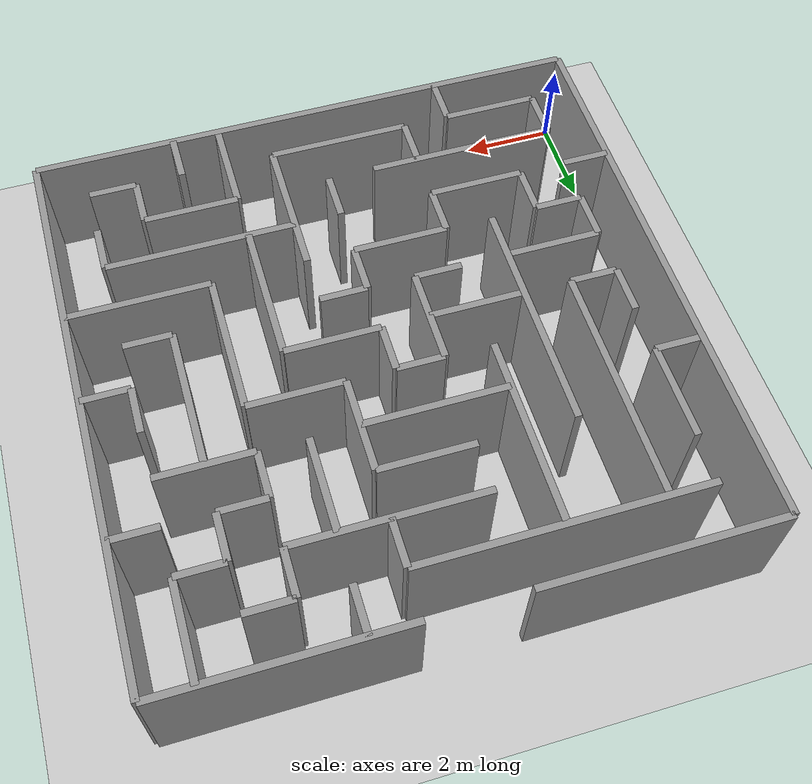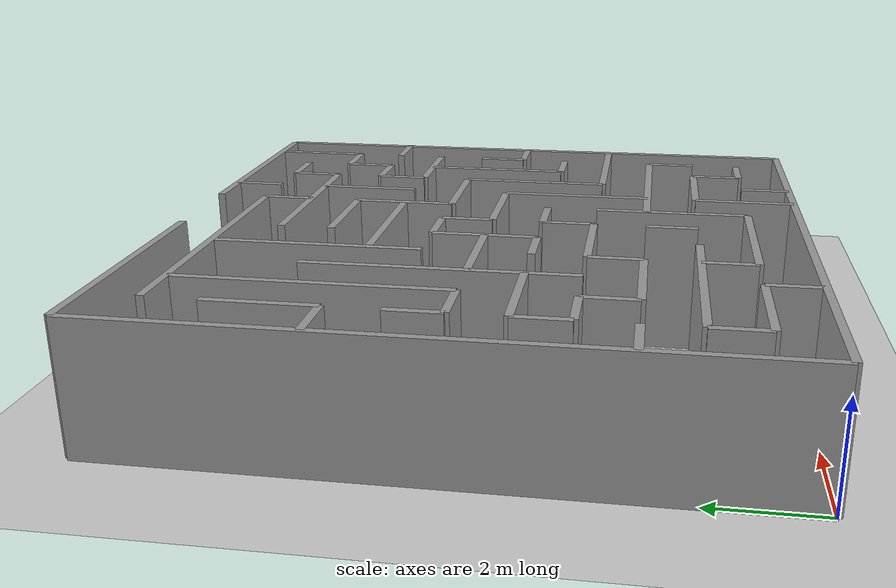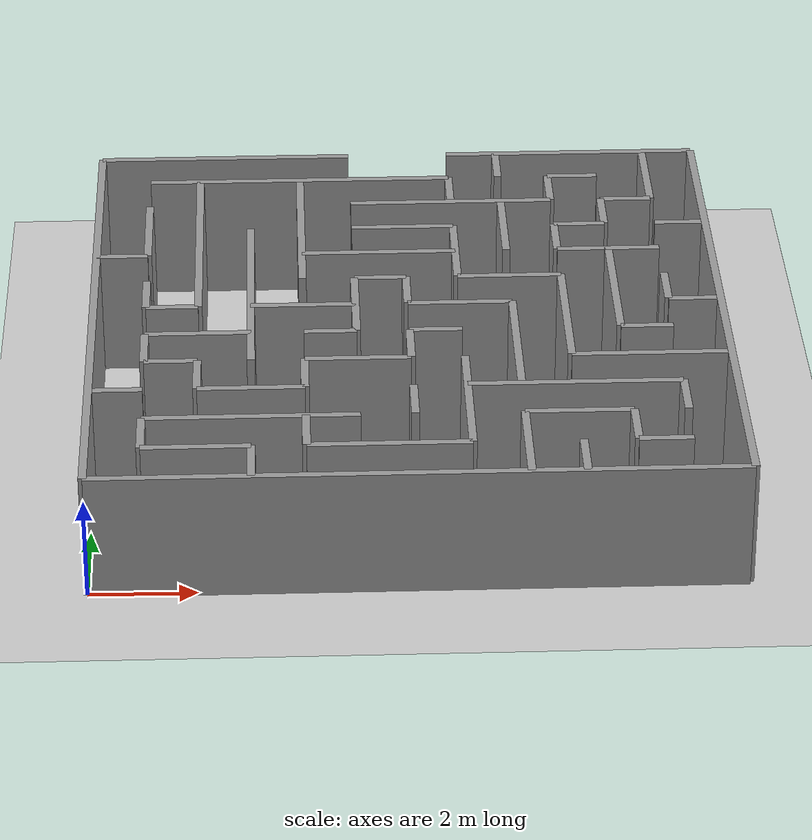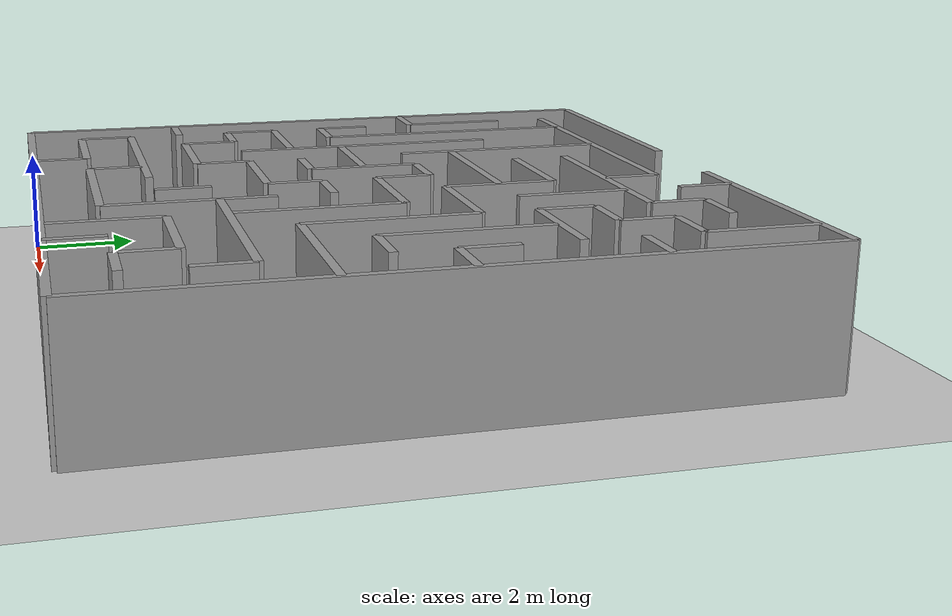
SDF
<sdf version='1.7'>
  <world name='default'>
    <light name='sun' type='directional'>
      <cast_shadows>1</cast_shadows><pose>0 0 10 0 -0 0</pose>
      <diffuse>0.8 0.8 0.8 1</diffuse><specular>0.2 0.2 0.2 1</specular>
      <attenuation><range>1000</range><constant>0.9</constant><linear>0.01</linear><quadratic>0.001</quadratic></attenuation>
      <direction>-0.5 0.1 -0.9</direction>
      <spot><inner_angle>0</inner_angle><outer_angle>0</outer_angle><falloff>0</falloff></spot>
    </light>
    <model name='ground_plane'><static>1</static><link name='link'>
      <collision name='collision'><geometry><plane><normal>0 0 1</normal><size>100 100</size></plane></geometry>
        <surface><contact><collide_bitmask>65535</collide_bitmask><ode/></contact>
          <friction><ode><mu>100</mu><mu2>50</mu2></ode><torsional><ode/></torsional></friction><bounce/></surface>
        <max_contacts>10</max_contacts></collision>
      <visual name='visual'><cast_shadows>0</cast_shadows>
        <geometry><plane><normal>0 0 1</normal><size>100 100</size></plane></geometry>
        <material><script><uri>file://media/materials/scripts/gazebo.material</uri><name>Gazebo/Grey</name></script></material>
      </visual><self_collide>0</self_collide><enable_wind>0</enable_wind><kinematic>0</kinematic>
    </link></model>
    <gravity>0 0 -9.8</gravity><magnetic_field>6e-06 2.3e-05 -4.2e-05</magnetic_field>
    <atmosphere type='adiabatic'/>
    <physics type='ode'><max_step_size>0.001</max_step_size><real_time_factor>1</real_time_factor><real_time_update_rate>1000</real_time_update_rate></physics>
    <scene><ambient>0.4 0.4 0.4 1</ambient><background>0.7 0.7 0.7 1</background><shadows>1</shadows></scene>
    <wind/><spherical_coordinates><surface_model>EARTH_WGS84</surface_model>
      <latitude_deg>0</latitude_deg><longitude_deg>0</longitude_deg><elevation>0</elevation><heading_deg>0</heading_deg>
    </spherical_coordinates>

    <model name='maze_3'>
      <pose>0 0 0 0 0 0</pose>

      <link name='Ext_W'><collision name='col'><geometry><box><size>12 0.15 2.5</size></box></geometry><pose>0 0 1.25 0 0 0</pose></collision><visual name='vis'><pose>0 0 1.25 0 0 0</pose><geometry><box><size>12 0.15 2.5</size></box></geometry><material><script><uri>file://media/materials/scripts/gazebo.material</uri><name>Gazebo/Grey</name></script></material></visual><pose>0 6.0 0 0 0 1.5708</pose><self_collide>0</self_collide><enable_wind>0</enable_wind><kinematic>0</kinematic></link>
      <link name='Ext_E'><collision name='col'><geometry><box><size>12 0.15 2.5</size></box></geometry><pose>0 0 1.25 0 0 0</pose></collision><visual name='vis'><pose>0 0 1.25 0 0 0</pose><geometry><box><size>12 0.15 2.5</size></box></geometry><material><script><uri>file://media/materials/scripts/gazebo.material</uri><name>Gazebo/Grey</name></script></material></visual><pose>12 6.0 0 0 0 1.5708</pose><self_collide>0</self_collide><enable_wind>0</enable_wind><kinematic>0</kinematic></link>
      <link name='Ext_S'><collision name='col'><geometry><box><size>12 0.15 2.5</size></box></geometry><pose>0 0 1.25 0 0 0</pose></collision><visual name='vis'><pose>0 0 1.25 0 0 0</pose><geometry><box><size>12 0.15 2.5</size></box></geometry><material><script><uri>file://media/materials/scripts/gazebo.material</uri><name>Gazebo/Grey</name></script></material></visual><pose>6.0 0 0 0 0 0</pose><self_collide>0</self_collide><enable_wind>0</enable_wind><kinematic>0</kinematic></link>
      <link name='Ext_NL'><collision name='col'><geometry><box><size>5 0.15 2.5</size></box></geometry><pose>0 0 1.25 0 0 0</pose></collision><visual name='vis'><pose>0 0 1.25 0 0 0</pose><geometry><box><size>5 0.15 2.5</size></box></geometry><material><script><uri>file://media/materials/scripts/gazebo.material</uri><name>Gazebo/Grey</name></script></material></visual><pose>2.5 12 0 0 0 0</pose><self_collide>0</self_collide><enable_wind>0</enable_wind><kinematic>0</kinematic></link>
      <link name='Ext_NR'><collision name='col'><geometry><box><size>5 0.15 2.5</size></box></geometry><pose>0 0 1.25 0 0 0</pose></collision><visual name='vis'><pose>0 0 1.25 0 0 0</pose><geometry><box><size>5 0.15 2.5</size></box></geometry><material><script><uri>file://media/materials/scripts/gazebo.material</uri><name>Gazebo/Grey</name></script></material></visual><pose>9.5 12 0 0 0 0</pose><self_collide>0</self_collide><enable_wind>0</enable_wind><kinematic>0</kinematic></link>
      <link name='H_1_1_3'><collision name='col'><geometry><box><size>2 0.15 2.5</size></box></geometry><pose>0 0 1.25 0 0 0</pose></collision><visual name='vis'><pose>0 0 1.25 0 0 0</pose><geometry><box><size>2 0.15 2.5</size></box></geometry><material><script><uri>file://media/materials/scripts/gazebo.material</uri><name>Gazebo/Grey</name></script></material></visual><pose>2.0 1 0 0 0 0</pose><self_collide>0</self_collide><enable_wind>0</enable_wind><kinematic>0</kinematic></link>
      <link name='H_1_4_7'><collision name='col'><geometry><box><size>3 0.15 2.5</size></box></geometry><pose>0 0 1.25 0 0 0</pose></collision><visual name='vis'><pose>0 0 1.25 0 0 0</pose><geometry><box><size>3 0.15 2.5</size></box></geometry><material><script><uri>file://media/materials/scripts/gazebo.material</uri><name>Gazebo/Grey</name></script></material></visual><pose>5.5 1 0 0 0 0</pose><self_collide>0</self_collide><enable_wind>0</enable_wind><kinematic>0</kinematic></link>
      <link name='H_1_10_11'><collision name='col'><geometry><box><size>1 0.15 2.5</size></box></geometry><pose>0 0 1.25 0 0 0</pose></collision><visual name='vis'><pose>0 0 1.25 0 0 0</pose><geometry><box><size>1 0.15 2.5</size></box></geometry><material><script><uri>file://media/materials/scripts/gazebo.material</uri><name>Gazebo/Grey</name></script></material></visual><pose>10.5 1 0 0 0 0</pose><self_collide>0</self_collide><enable_wind>0</enable_wind><kinematic>0</kinematic></link>
      <link name='H_2_1_5'><collision name='col'><geometry><box><size>4 0.15 2.5</size></box></geometry><pose>0 0 1.25 0 0 0</pose></collision><visual name='vis'><pose>0 0 1.25 0 0 0</pose><geometry><box><size>4 0.15 2.5</size></box></geometry><material><script><uri>file://media/materials/scripts/gazebo.material</uri><name>Gazebo/Grey</name></script></material></visual><pose>3.0 2 0 0 0 0</pose><self_collide>0</self_collide><enable_wind>0</enable_wind><kinematic>0</kinematic></link>
      <link name='H_2_8_10'><collision name='col'><geometry><box><size>2 0.15 2.5</size></box></geometry><pose>0 0 1.25 0 0 0</pose></collision><visual name='vis'><pose>0 0 1.25 0 0 0</pose><geometry><box><size>2 0.15 2.5</size></box></geometry><material><script><uri>file://media/materials/scripts/gazebo.material</uri><name>Gazebo/Grey</name></script></material></visual><pose>9.0 2 0 0 0 0</pose><self_collide>0</self_collide><enable_wind>0</enable_wind><kinematic>0</kinematic></link>
      <link name='H_3_0_1'><collision name='col'><geometry><box><size>1 0.15 2.5</size></box></geometry><pose>0 0 1.25 0 0 0</pose></collision><visual name='vis'><pose>0 0 1.25 0 0 0</pose><geometry><box><size>1 0.15 2.5</size></box></geometry><material><script><uri>file://media/materials/scripts/gazebo.material</uri><name>Gazebo/Grey</name></script></material></visual><pose>0.5 3 0 0 0 0</pose><self_collide>0</self_collide><enable_wind>0</enable_wind><kinematic>0</kinematic></link>
      <link name='H_3_2_4'><collision name='col'><geometry><box><size>2 0.15 2.5</size></box></geometry><pose>0 0 1.25 0 0 0</pose></collision><visual name='vis'><pose>0 0 1.25 0 0 0</pose><geometry><box><size>2 0.15 2.5</size></box></geometry><material><script><uri>file://media/materials/scripts/gazebo.material</uri><name>Gazebo/Grey</name></script></material></visual><pose>3.0 3 0 0 0 0</pose><self_collide>0</self_collide><enable_wind>0</enable_wind><kinematic>0</kinematic></link>
      <link name='H_3_7_11'><collision name='col'><geometry><box><size>4 0.15 2.5</size></box></geometry><pose>0 0 1.25 0 0 0</pose></collision><visual name='vis'><pose>0 0 1.25 0 0 0</pose><geometry><box><size>4 0.15 2.5</size></box></geometry><material><script><uri>file://media/materials/scripts/gazebo.material</uri><name>Gazebo/Grey</name></script></material></visual><pose>9.0 3 0 0 0 0</pose><self_collide>0</self_collide><enable_wind>0</enable_wind><kinematic>0</kinematic></link>
      <link name='H_4_1_2'><collision name='col'><geometry><box><size>1 0.15 2.5</size></box></geometry><pose>0 0 1.25 0 0 0</pose></collision><visual name='vis'><pose>0 0 1.25 0 0 0</pose><geometry><box><size>1 0.15 2.5</size></box></geometry><material><script><uri>file://media/materials/scripts/gazebo.material</uri><name>Gazebo/Grey</name></script></material></visual><pose>1.5 4 0 0 0 0</pose><self_collide>0</self_collide><enable_wind>0</enable_wind><kinematic>0</kinematic></link>
      <link name='H_4_4_6'><collision name='col'><geometry><box><size>2 0.15 2.5</size></box></geometry><pose>0 0 1.25 0 0 0</pose></collision><visual name='vis'><pose>0 0 1.25 0 0 0</pose><geometry><box><size>2 0.15 2.5</size></box></geometry><material><script><uri>file://media/materials/scripts/gazebo.material</uri><name>Gazebo/Grey</name></script></material></visual><pose>5.0 4 0 0 0 0</pose><self_collide>0</self_collide><enable_wind>0</enable_wind><kinematic>0</kinematic></link>
      <link name='H_4_9_12'><collision name='col'><geometry><box><size>3 0.15 2.5</size></box></geometry><pose>0 0 1.25 0 0 0</pose></collision><visual name='vis'><pose>0 0 1.25 0 0 0</pose><geometry><box><size>3 0.15 2.5</size></box></geometry><material><script><uri>file://media/materials/scripts/gazebo.material</uri><name>Gazebo/Grey</name></script></material></visual><pose>10.5 4 0 0 0 0</pose><self_collide>0</self_collide><enable_wind>0</enable_wind><kinematic>0</kinematic></link>
      <link name='H_5_1_3'><collision name='col'><geometry><box><size>2 0.15 2.5</size></box></geometry><pose>0 0 1.25 0 0 0</pose></collision><visual name='vis'><pose>0 0 1.25 0 0 0</pose><geometry><box><size>2 0.15 2.5</size></box></geometry><material><script><uri>file://media/materials/scripts/gazebo.material</uri><name>Gazebo/Grey</name></script></material></visual><pose>2.0 5 0 0 0 0</pose><self_collide>0</self_collide><enable_wind>0</enable_wind><kinematic>0</kinematic></link>
      <link name='H_5_4_5'><collision name='col'><geometry><box><size>1 0.15 2.5</size></box></geometry><pose>0 0 1.25 0 0 0</pose></collision><visual name='vis'><pose>0 0 1.25 0 0 0</pose><geometry><box><size>1 0.15 2.5</size></box></geometry><material><script><uri>file://media/materials/scripts/gazebo.material</uri><name>Gazebo/Grey</name></script></material></visual><pose>4.5 5 0 0 0 0</pose><self_collide>0</self_collide><enable_wind>0</enable_wind><kinematic>0</kinematic></link>
      <link name='H_5_6_7'><collision name='col'><geometry><box><size>1 0.15 2.5</size></box></geometry><pose>0 0 1.25 0 0 0</pose></collision><visual name='vis'><pose>0 0 1.25 0 0 0</pose><geometry><box><size>1 0.15 2.5</size></box></geometry><material><script><uri>file://media/materials/scripts/gazebo.material</uri><name>Gazebo/Grey</name></script></material></visual><pose>6.5 5 0 0 0 0</pose><self_collide>0</self_collide><enable_wind>0</enable_wind><kinematic>0</kinematic></link>
      <link name='H_5_10_11'><collision name='col'><geometry><box><size>1 0.15 2.5</size></box></geometry><pose>0 0 1.25 0 0 0</pose></collision><visual name='vis'><pose>0 0 1.25 0 0 0</pose><geometry><box><size>1 0.15 2.5</size></box></geometry><material><script><uri>file://media/materials/scripts/gazebo.material</uri><name>Gazebo/Grey</name></script></material></visual><pose>10.5 5 0 0 0 0</pose><self_collide>0</self_collide><enable_wind>0</enable_wind><kinematic>0</kinematic></link>
      <link name='H_6_1_2'><collision name='col'><geometry><box><size>1 0.15 2.5</size></box></geometry><pose>0 0 1.25 0 0 0</pose></collision><visual name='vis'><pose>0 0 1.25 0 0 0</pose><geometry><box><size>1 0.15 2.5</size></box></geometry><material><script><uri>file://media/materials/scripts/gazebo.material</uri><name>Gazebo/Grey</name></script></material></visual><pose>1.5 6 0 0 0 0</pose><self_collide>0</self_collide><enable_wind>0</enable_wind><kinematic>0</kinematic></link>
      <link name='H_6_3_5'><collision name='col'><geometry><box><size>2 0.15 2.5</size></box></geometry><pose>0 0 1.25 0 0 0</pose></collision><visual name='vis'><pose>0 0 1.25 0 0 0</pose><geometry><box><size>2 0.15 2.5</size></box></geometry><material><script><uri>file://media/materials/scripts/gazebo.material</uri><name>Gazebo/Grey</name></script></material></visual><pose>4.0 6 0 0 0 0</pose><self_collide>0</self_collide><enable_wind>0</enable_wind><kinematic>0</kinematic></link>
      <link name='H_6_6_8'><collision name='col'><geometry><box><size>2 0.15 2.5</size></box></geometry><pose>0 0 1.25 0 0 0</pose></collision><visual name='vis'><pose>0 0 1.25 0 0 0</pose><geometry><box><size>2 0.15 2.5</size></box></geometry><material><script><uri>file://media/materials/scripts/gazebo.material</uri><name>Gazebo/Grey</name></script></material></visual><pose>7.0 6 0 0 0 0</pose><self_collide>0</self_collide><enable_wind>0</enable_wind><kinematic>0</kinematic></link>
      <link name='H_6_11_12'><collision name='col'><geometry><box><size>1 0.15 2.5</size></box></geometry><pose>0 0 1.25 0 0 0</pose></collision><visual name='vis'><pose>0 0 1.25 0 0 0</pose><geometry><box><size>1 0.15 2.5</size></box></geometry><material><script><uri>file://media/materials/scripts/gazebo.material</uri><name>Gazebo/Grey</name></script></material></visual><pose>11.5 6 0 0 0 0</pose><self_collide>0</self_collide><enable_wind>0</enable_wind><kinematic>0</kinematic></link>
      <link name='H_7_5_6'><collision name='col'><geometry><box><size>1 0.15 2.5</size></box></geometry><pose>0 0 1.25 0 0 0</pose></collision><visual name='vis'><pose>0 0 1.25 0 0 0</pose><geometry><box><size>1 0.15 2.5</size></box></geometry><material><script><uri>file://media/materials/scripts/gazebo.material</uri><name>Gazebo/Grey</name></script></material></visual><pose>5.5 7 0 0 0 0</pose><self_collide>0</self_collide><enable_wind>0</enable_wind><kinematic>0</kinematic></link>
      <link name='H_7_7_9'><collision name='col'><geometry><box><size>2 0.15 2.5</size></box></geometry><pose>0 0 1.25 0 0 0</pose></collision><visual name='vis'><pose>0 0 1.25 0 0 0</pose><geometry><box><size>2 0.15 2.5</size></box></geometry><material><script><uri>file://media/materials/scripts/gazebo.material</uri><name>Gazebo/Grey</name></script></material></visual><pose>8.0 7 0 0 0 0</pose><self_collide>0</self_collide><enable_wind>0</enable_wind><kinematic>0</kinematic></link>
      <link name='H_8_0_1'><collision name='col'><geometry><box><size>1 0.15 2.5</size></box></geometry><pose>0 0 1.25 0 0 0</pose></collision><visual name='vis'><pose>0 0 1.25 0 0 0</pose><geometry><box><size>1 0.15 2.5</size></box></geometry><material><script><uri>file://media/materials/scripts/gazebo.material</uri><name>Gazebo/Grey</name></script></material></visual><pose>0.5 8 0 0 0 0</pose><self_collide>0</self_collide><enable_wind>0</enable_wind><kinematic>0</kinematic></link>
      <link name='H_8_4_7'><collision name='col'><geometry><box><size>3 0.15 2.5</size></box></geometry><pose>0 0 1.25 0 0 0</pose></collision><visual name='vis'><pose>0 0 1.25 0 0 0</pose><geometry><box><size>3 0.15 2.5</size></box></geometry><material><script><uri>file://media/materials/scripts/gazebo.material</uri><name>Gazebo/Grey</name></script></material></visual><pose>5.5 8 0 0 0 0</pose><self_collide>0</self_collide><enable_wind>0</enable_wind><kinematic>0</kinematic></link>
      <link name='H_8_9_11'><collision name='col'><geometry><box><size>2 0.15 2.5</size></box></geometry><pose>0 0 1.25 0 0 0</pose></collision><visual name='vis'><pose>0 0 1.25 0 0 0</pose><geometry><box><size>2 0.15 2.5</size></box></geometry><material><script><uri>file://media/materials/scripts/gazebo.material</uri><name>Gazebo/Grey</name></script></material></visual><pose>10.0 8 0 0 0 0</pose><self_collide>0</self_collide><enable_wind>0</enable_wind><kinematic>0</kinematic></link>
      <link name='H_9_5_7'><collision name='col'><geometry><box><size>2 0.15 2.5</size></box></geometry><pose>0 0 1.25 0 0 0</pose></collision><visual name='vis'><pose>0 0 1.25 0 0 0</pose><geometry><box><size>2 0.15 2.5</size></box></geometry><material><script><uri>file://media/materials/scripts/gazebo.material</uri><name>Gazebo/Grey</name></script></material></visual><pose>6.0 9 0 0 0 0</pose><self_collide>0</self_collide><enable_wind>0</enable_wind><kinematic>0</kinematic></link>
      <link name='H_9_9_10'><collision name='col'><geometry><box><size>1 0.15 2.5</size></box></geometry><pose>0 0 1.25 0 0 0</pose></collision><visual name='vis'><pose>0 0 1.25 0 0 0</pose><geometry><box><size>1 0.15 2.5</size></box></geometry><material><script><uri>file://media/materials/scripts/gazebo.material</uri><name>Gazebo/Grey</name></script></material></visual><pose>9.5 9 0 0 0 0</pose><self_collide>0</self_collide><enable_wind>0</enable_wind><kinematic>0</kinematic></link>
      <link name='H_9_11_12'><collision name='col'><geometry><box><size>1 0.15 2.5</size></box></geometry><pose>0 0 1.25 0 0 0</pose></collision><visual name='vis'><pose>0 0 1.25 0 0 0</pose><geometry><box><size>1 0.15 2.5</size></box></geometry><material><script><uri>file://media/materials/scripts/gazebo.material</uri><name>Gazebo/Grey</name></script></material></visual><pose>11.5 9 0 0 0 0</pose><self_collide>0</self_collide><enable_wind>0</enable_wind><kinematic>0</kinematic></link>
      <link name='H_10_5_9'><collision name='col'><geometry><box><size>4 0.15 2.5</size></box></geometry><pose>0 0 1.25 0 0 0</pose></collision><visual name='vis'><pose>0 0 1.25 0 0 0</pose><geometry><box><size>4 0.15 2.5</size></box></geometry><material><script><uri>file://media/materials/scripts/gazebo.material</uri><name>Gazebo/Grey</name></script></material></visual><pose>7.0 10 0 0 0 0</pose><self_collide>0</self_collide><enable_wind>0</enable_wind><kinematic>0</kinematic></link>
      <link name='H_10_10_11'><collision name='col'><geometry><box><size>1 0.15 2.5</size></box></geometry><pose>0 0 1.25 0 0 0</pose></collision><visual name='vis'><pose>0 0 1.25 0 0 0</pose><geometry><box><size>1 0.15 2.5</size></box></geometry><material><script><uri>file://media/materials/scripts/gazebo.material</uri><name>Gazebo/Grey</name></script></material></visual><pose>10.5 10 0 0 0 0</pose><self_collide>0</self_collide><enable_wind>0</enable_wind><kinematic>0</kinematic></link>
      <link name='H_11_1_7'><collision name='col'><geometry><box><size>6 0.15 2.5</size></box></geometry><pose>0 0 1.25 0 0 0</pose></collision><visual name='vis'><pose>0 0 1.25 0 0 0</pose><geometry><box><size>6 0.15 2.5</size></box></geometry><material><script><uri>file://media/materials/scripts/gazebo.material</uri><name>Gazebo/Grey</name></script></material></visual><pose>4.0 11 0 0 0 0</pose><self_collide>0</self_collide><enable_wind>0</enable_wind><kinematic>0</kinematic></link>
      <link name='H_11_9_10'><collision name='col'><geometry><box><size>1 0.15 2.5</size></box></geometry><pose>0 0 1.25 0 0 0</pose></collision><visual name='vis'><pose>0 0 1.25 0 0 0</pose><geometry><box><size>1 0.15 2.5</size></box></geometry><material><script><uri>file://media/materials/scripts/gazebo.material</uri><name>Gazebo/Grey</name></script></material></visual><pose>9.5 11 0 0 0 0</pose><self_collide>0</self_collide><enable_wind>0</enable_wind><kinematic>0</kinematic></link>
      <link name='V_1_1_2'><collision name='col'><geometry><box><size>1 0.15 2.5</size></box></geometry><pose>0 0 1.25 0 0 0</pose></collision><visual name='vis'><pose>0 0 1.25 0 0 0</pose><geometry><box><size>1 0.15 2.5</size></box></geometry><material><script><uri>file://media/materials/scripts/gazebo.material</uri><name>Gazebo/Grey</name></script></material></visual><pose>1 1.5 0 0 0 1.5708</pose><self_collide>0</self_collide><enable_wind>0</enable_wind><kinematic>0</kinematic></link>
      <link name='V_1_4_5'><collision name='col'><geometry><box><size>1 0.15 2.5</size></box></geometry><pose>0 0 1.25 0 0 0</pose></collision><visual name='vis'><pose>0 0 1.25 0 0 0</pose><geometry><box><size>1 0.15 2.5</size></box></geometry><material><script><uri>file://media/materials/scripts/gazebo.material</uri><name>Gazebo/Grey</name></script></material></visual><pose>1 4.5 0 0 0 1.5708</pose><self_collide>0</self_collide><enable_wind>0</enable_wind><kinematic>0</kinematic></link>
      <link name='V_1_6_7'><collision name='col'><geometry><box><size>1 0.15 2.5</size></box></geometry><pose>0 0 1.25 0 0 0</pose></collision><visual name='vis'><pose>0 0 1.25 0 0 0</pose><geometry><box><size>1 0.15 2.5</size></box></geometry><material><script><uri>file://media/materials/scripts/gazebo.material</uri><name>Gazebo/Grey</name></script></material></visual><pose>1 6.5 0 0 0 1.5708</pose><self_collide>0</self_collide><enable_wind>0</enable_wind><kinematic>0</kinematic></link>
      <link name='V_1_8_10'><collision name='col'><geometry><box><size>2 0.15 2.5</size></box></geometry><pose>0 0 1.25 0 0 0</pose></collision><visual name='vis'><pose>0 0 1.25 0 0 0</pose><geometry><box><size>2 0.15 2.5</size></box></geometry><material><script><uri>file://media/materials/scripts/gazebo.material</uri><name>Gazebo/Grey</name></script></material></visual><pose>1 9.0 0 0 0 1.5708</pose><self_collide>0</self_collide><enable_wind>0</enable_wind><kinematic>0</kinematic></link>
      <link name='V_2_3_4'><collision name='col'><geometry><box><size>1 0.15 2.5</size></box></geometry><pose>0 0 1.25 0 0 0</pose></collision><visual name='vis'><pose>0 0 1.25 0 0 0</pose><geometry><box><size>1 0.15 2.5</size></box></geometry><material><script><uri>file://media/materials/scripts/gazebo.material</uri><name>Gazebo/Grey</name></script></material></visual><pose>2 3.5 0 0 0 1.5708</pose><self_collide>0</self_collide><enable_wind>0</enable_wind><kinematic>0</kinematic></link>
      <link name='V_2_6_11'><collision name='col'><geometry><box><size>5 0.15 2.5</size></box></geometry><pose>0 0 1.25 0 0 0</pose></collision><visual name='vis'><pose>0 0 1.25 0 0 0</pose><geometry><box><size>5 0.15 2.5</size></box></geometry><material><script><uri>file://media/materials/scripts/gazebo.material</uri><name>Gazebo/Grey</name></script></material></visual><pose>2 8.5 0 0 0 1.5708</pose><self_collide>0</self_collide><enable_wind>0</enable_wind><kinematic>0</kinematic></link>
      <link name='V_3_0_1'><collision name='col'><geometry><box><size>1 0.15 2.5</size></box></geometry><pose>0 0 1.25 0 0 0</pose></collision><visual name='vis'><pose>0 0 1.25 0 0 0</pose><geometry><box><size>1 0.15 2.5</size></box></geometry><material><script><uri>file://media/materials/scripts/gazebo.material</uri><name>Gazebo/Grey</name></script></material></visual><pose>3 0.5 0 0 0 1.5708</pose><self_collide>0</self_collide><enable_wind>0</enable_wind><kinematic>0</kinematic></link>
      <link name='V_3_4_9'><collision name='col'><geometry><box><size>5 0.15 2.5</size></box></geometry><pose>0 0 1.25 0 0 0</pose></collision><visual name='vis'><pose>0 0 1.25 0 0 0</pose><geometry><box><size>5 0.15 2.5</size></box></geometry><material><script><uri>file://media/materials/scripts/gazebo.material</uri><name>Gazebo/Grey</name></script></material></visual><pose>3 6.5 0 0 0 1.5708</pose><self_collide>0</self_collide><enable_wind>0</enable_wind><kinematic>0</kinematic></link>
      <link name='V_4_1_2'><collision name='col'><geometry><box><size>1 0.15 2.5</size></box></geometry><pose>0 0 1.25 0 0 0</pose></collision><visual name='vis'><pose>0 0 1.25 0 0 0</pose><geometry><box><size>1 0.15 2.5</size></box></geometry><material><script><uri>file://media/materials/scripts/gazebo.material</uri><name>Gazebo/Grey</name></script></material></visual><pose>4 1.5 0 0 0 1.5708</pose><self_collide>0</self_collide><enable_wind>0</enable_wind><kinematic>0</kinematic></link>
      <link name='V_4_3_4'><collision name='col'><geometry><box><size>1 0.15 2.5</size></box></geometry><pose>0 0 1.25 0 0 0</pose></collision><visual name='vis'><pose>0 0 1.25 0 0 0</pose><geometry><box><size>1 0.15 2.5</size></box></geometry><material><script><uri>file://media/materials/scripts/gazebo.material</uri><name>Gazebo/Grey</name></script></material></visual><pose>4 3.5 0 0 0 1.5708</pose><self_collide>0</self_collide><enable_wind>0</enable_wind><kinematic>0</kinematic></link>
      <link name='V_4_7_11'><collision name='col'><geometry><box><size>4 0.15 2.5</size></box></geometry><pose>0 0 1.25 0 0 0</pose></collision><visual name='vis'><pose>0 0 1.25 0 0 0</pose><geometry><box><size>4 0.15 2.5</size></box></geometry><material><script><uri>file://media/materials/scripts/gazebo.material</uri><name>Gazebo/Grey</name></script></material></visual><pose>4 9.0 0 0 0 1.5708</pose><self_collide>0</self_collide><enable_wind>0</enable_wind><kinematic>0</kinematic></link>
      <link name='V_5_5_7'><collision name='col'><geometry><box><size>2 0.15 2.5</size></box></geometry><pose>0 0 1.25 0 0 0</pose></collision><visual name='vis'><pose>0 0 1.25 0 0 0</pose><geometry><box><size>2 0.15 2.5</size></box></geometry><material><script><uri>file://media/materials/scripts/gazebo.material</uri><name>Gazebo/Grey</name></script></material></visual><pose>5 6.0 0 0 0 1.5708</pose><self_collide>0</self_collide><enable_wind>0</enable_wind><kinematic>0</kinematic></link>
      <link name='V_6_2_3'><collision name='col'><geometry><box><size>1 0.15 2.5</size></box></geometry><pose>0 0 1.25 0 0 0</pose></collision><visual name='vis'><pose>0 0 1.25 0 0 0</pose><geometry><box><size>1 0.15 2.5</size></box></geometry><material><script><uri>file://media/materials/scripts/gazebo.material</uri><name>Gazebo/Grey</name></script></material></visual><pose>6 2.5 0 0 0 1.5708</pose><self_collide>0</self_collide><enable_wind>0</enable_wind><kinematic>0</kinematic></link>
      <link name='V_6_4_5'><collision name='col'><geometry><box><size>1 0.15 2.5</size></box></geometry><pose>0 0 1.25 0 0 0</pose></collision><visual name='vis'><pose>0 0 1.25 0 0 0</pose><geometry><box><size>1 0.15 2.5</size></box></geometry><material><script><uri>file://media/materials/scripts/gazebo.material</uri><name>Gazebo/Grey</name></script></material></visual><pose>6 4.5 0 0 0 1.5708</pose><self_collide>0</self_collide><enable_wind>0</enable_wind><kinematic>0</kinematic></link>
      <link name='V_6_6_7'><collision name='col'><geometry><box><size>1 0.15 2.5</size></box></geometry><pose>0 0 1.25 0 0 0</pose></collision><visual name='vis'><pose>0 0 1.25 0 0 0</pose><geometry><box><size>1 0.15 2.5</size></box></geometry><material><script><uri>file://media/materials/scripts/gazebo.material</uri><name>Gazebo/Grey</name></script></material></visual><pose>6 6.5 0 0 0 1.5708</pose><self_collide>0</self_collide><enable_wind>0</enable_wind><kinematic>0</kinematic></link>
      <link name='V_7_1_4'><collision name='col'><geometry><box><size>3 0.15 2.5</size></box></geometry><pose>0 0 1.25 0 0 0</pose></collision><visual name='vis'><pose>0 0 1.25 0 0 0</pose><geometry><box><size>3 0.15 2.5</size></box></geometry><material><script><uri>file://media/materials/scripts/gazebo.material</uri><name>Gazebo/Grey</name></script></material></visual><pose>7 2.5 0 0 0 1.5708</pose><self_collide>0</self_collide><enable_wind>0</enable_wind><kinematic>0</kinematic></link>
      <link name='V_7_7_9'><collision name='col'><geometry><box><size>2 0.15 2.5</size></box></geometry><pose>0 0 1.25 0 0 0</pose></collision><visual name='vis'><pose>0 0 1.25 0 0 0</pose><geometry><box><size>2 0.15 2.5</size></box></geometry><material><script><uri>file://media/materials/scripts/gazebo.material</uri><name>Gazebo/Grey</name></script></material></visual><pose>7 8.0 0 0 0 1.5708</pose><self_collide>0</self_collide><enable_wind>0</enable_wind><kinematic>0</kinematic></link>
      <link name='V_7_10_11'><collision name='col'><geometry><box><size>1 0.15 2.5</size></box></geometry><pose>0 0 1.25 0 0 0</pose></collision><visual name='vis'><pose>0 0 1.25 0 0 0</pose><geometry><box><size>1 0.15 2.5</size></box></geometry><material><script><uri>file://media/materials/scripts/gazebo.material</uri><name>Gazebo/Grey</name></script></material></visual><pose>7 10.5 0 0 0 1.5708</pose><self_collide>0</self_collide><enable_wind>0</enable_wind><kinematic>0</kinematic></link>
      <link name='V_8_0_2'><collision name='col'><geometry><box><size>2 0.15 2.5</size></box></geometry><pose>0 0 1.25 0 0 0</pose></collision><visual name='vis'><pose>0 0 1.25 0 0 0</pose><geometry><box><size>2 0.15 2.5</size></box></geometry><material><script><uri>file://media/materials/scripts/gazebo.material</uri><name>Gazebo/Grey</name></script></material></visual><pose>8 1.0 0 0 0 1.5708</pose><self_collide>0</self_collide><enable_wind>0</enable_wind><kinematic>0</kinematic></link>
      <link name='V_8_3_6'><collision name='col'><geometry><box><size>3 0.15 2.5</size></box></geometry><pose>0 0 1.25 0 0 0</pose></collision><visual name='vis'><pose>0 0 1.25 0 0 0</pose><geometry><box><size>3 0.15 2.5</size></box></geometry><material><script><uri>file://media/materials/scripts/gazebo.material</uri><name>Gazebo/Grey</name></script></material></visual><pose>8 4.5 0 0 0 1.5708</pose><self_collide>0</self_collide><enable_wind>0</enable_wind><kinematic>0</kinematic></link>
      <link name='V_8_8_10'><collision name='col'><geometry><box><size>2 0.15 2.5</size></box></geometry><pose>0 0 1.25 0 0 0</pose></collision><visual name='vis'><pose>0 0 1.25 0 0 0</pose><geometry><box><size>2 0.15 2.5</size></box></geometry><material><script><uri>file://media/materials/scripts/gazebo.material</uri><name>Gazebo/Grey</name></script></material></visual><pose>8 9.0 0 0 0 1.5708</pose><self_collide>0</self_collide><enable_wind>0</enable_wind><kinematic>0</kinematic></link>
      <link name='V_8_11_12'><collision name='col'><geometry><box><size>1 0.15 2.5</size></box></geometry><pose>0 0 1.25 0 0 0</pose></collision><visual name='vis'><pose>0 0 1.25 0 0 0</pose><geometry><box><size>1 0.15 2.5</size></box></geometry><material><script><uri>file://media/materials/scripts/gazebo.material</uri><name>Gazebo/Grey</name></script></material></visual><pose>8 11.5 0 0 0 1.5708</pose><self_collide>0</self_collide><enable_wind>0</enable_wind><kinematic>0</kinematic></link>
      <link name='V_9_0_1'><collision name='col'><geometry><box><size>1 0.15 2.5</size></box></geometry><pose>0 0 1.25 0 0 0</pose></collision><visual name='vis'><pose>0 0 1.25 0 0 0</pose><geometry><box><size>1 0.15 2.5</size></box></geometry><material><script><uri>file://media/materials/scripts/gazebo.material</uri><name>Gazebo/Grey</name></script></material></visual><pose>9 0.5 0 0 0 1.5708</pose><self_collide>0</self_collide><enable_wind>0</enable_wind><kinematic>0</kinematic></link>
      <link name='V_9_4_7'><collision name='col'><geometry><box><size>3 0.15 2.5</size></box></geometry><pose>0 0 1.25 0 0 0</pose></collision><visual name='vis'><pose>0 0 1.25 0 0 0</pose><geometry><box><size>3 0.15 2.5</size></box></geometry><material><script><uri>file://media/materials/scripts/gazebo.material</uri><name>Gazebo/Grey</name></script></material></visual><pose>9 5.5 0 0 0 1.5708</pose><self_collide>0</self_collide><enable_wind>0</enable_wind><kinematic>0</kinematic></link>
      <link name='V_9_8_9'><collision name='col'><geometry><box><size>1 0.15 2.5</size></box></geometry><pose>0 0 1.25 0 0 0</pose></collision><visual name='vis'><pose>0 0 1.25 0 0 0</pose><geometry><box><size>1 0.15 2.5</size></box></geometry><material><script><uri>file://media/materials/scripts/gazebo.material</uri><name>Gazebo/Grey</name></script></material></visual><pose>9 8.5 0 0 0 1.5708</pose><self_collide>0</self_collide><enable_wind>0</enable_wind><kinematic>0</kinematic></link>
      <link name='V_9_10_11'><collision name='col'><geometry><box><size>1 0.15 2.5</size></box></geometry><pose>0 0 1.25 0 0 0</pose></collision><visual name='vis'><pose>0 0 1.25 0 0 0</pose><geometry><box><size>1 0.15 2.5</size></box></geometry><material><script><uri>file://media/materials/scripts/gazebo.material</uri><name>Gazebo/Grey</name></script></material></visual><pose>9 10.5 0 0 0 1.5708</pose><self_collide>0</self_collide><enable_wind>0</enable_wind><kinematic>0</kinematic></link>
      <link name='V_10_1_2'><collision name='col'><geometry><box><size>1 0.15 2.5</size></box></geometry><pose>0 0 1.25 0 0 0</pose></collision><visual name='vis'><pose>0 0 1.25 0 0 0</pose><geometry><box><size>1 0.15 2.5</size></box></geometry><material><script><uri>file://media/materials/scripts/gazebo.material</uri><name>Gazebo/Grey</name></script></material></visual><pose>10 1.5 0 0 0 1.5708</pose><self_collide>0</self_collide><enable_wind>0</enable_wind><kinematic>0</kinematic></link>
      <link name='V_10_5_8'><collision name='col'><geometry><box><size>3 0.15 2.5</size></box></geometry><pose>0 0 1.25 0 0 0</pose></collision><visual name='vis'><pose>0 0 1.25 0 0 0</pose><geometry><box><size>3 0.15 2.5</size></box></geometry><material><script><uri>file://media/materials/scripts/gazebo.material</uri><name>Gazebo/Grey</name></script></material></visual><pose>10 6.5 0 0 0 1.5708</pose><self_collide>0</self_collide><enable_wind>0</enable_wind><kinematic>0</kinematic></link>
      <link name='V_10_9_10'><collision name='col'><geometry><box><size>1 0.15 2.5</size></box></geometry><pose>0 0 1.25 0 0 0</pose></collision><visual name='vis'><pose>0 0 1.25 0 0 0</pose><geometry><box><size>1 0.15 2.5</size></box></geometry><material><script><uri>file://media/materials/scripts/gazebo.material</uri><name>Gazebo/Grey</name></script></material></visual><pose>10 9.5 0 0 0 1.5708</pose><self_collide>0</self_collide><enable_wind>0</enable_wind><kinematic>0</kinematic></link>
      <link name='V_11_2_3'><collision name='col'><geometry><box><size>1 0.15 2.5</size></box></geometry><pose>0 0 1.25 0 0 0</pose></collision><visual name='vis'><pose>0 0 1.25 0 0 0</pose><geometry><box><size>1 0.15 2.5</size></box></geometry><material><script><uri>file://media/materials/scripts/gazebo.material</uri><name>Gazebo/Grey</name></script></material></visual><pose>11 2.5 0 0 0 1.5708</pose><self_collide>0</self_collide><enable_wind>0</enable_wind><kinematic>0</kinematic></link>
      <link name='V_11_6_7'><collision name='col'><geometry><box><size>1 0.15 2.5</size></box></geometry><pose>0 0 1.25 0 0 0</pose></collision><visual name='vis'><pose>0 0 1.25 0 0 0</pose><geometry><box><size>1 0.15 2.5</size></box></geometry><material><script><uri>file://media/materials/scripts/gazebo.material</uri><name>Gazebo/Grey</name></script></material></visual><pose>11 6.5 0 0 0 1.5708</pose><self_collide>0</self_collide><enable_wind>0</enable_wind><kinematic>0</kinematic></link>
      <link name='V_11_10_12'><collision name='col'><geometry><box><size>2 0.15 2.5</size></box></geometry><pose>0 0 1.25 0 0 0</pose></collision><visual name='vis'><pose>0 0 1.25 0 0 0</pose><geometry><box><size>2 0.15 2.5</size></box></geometry><material><script><uri>file://media/materials/scripts/gazebo.material</uri><name>Gazebo/Grey</name></script></material></visual><pose>11 11.0 0 0 0 1.5708</pose><self_collide>0</self_collide><enable_wind>0</enable_wind><kinematic>0</kinematic></link>
      <static>1</static>
    </model>

    <gui fullscreen='0'>
      <camera name='user_camera'>
        <pose>6 6 80 0 1.5698 0</pose>
        <view_controller>orbit</view_controller>
        <projection_type>perspective</projection_type>
      </camera>
    </gui>
  </world>
</sdf>
